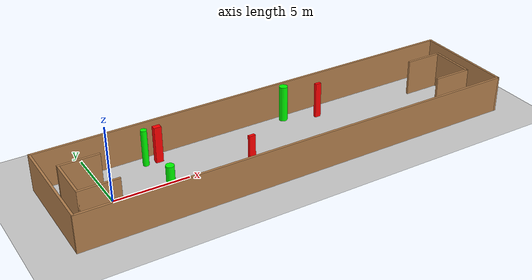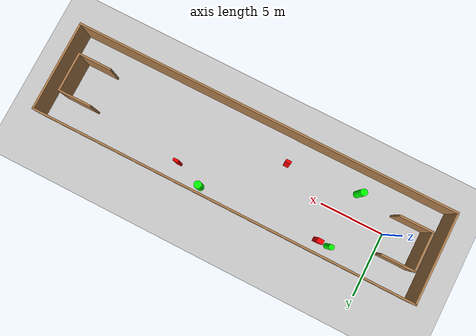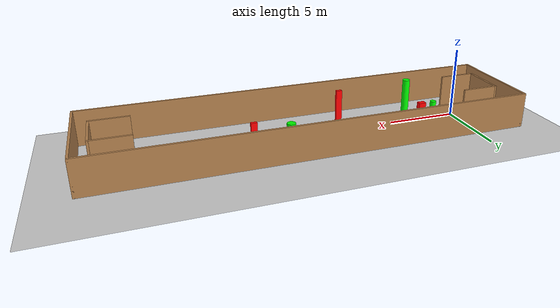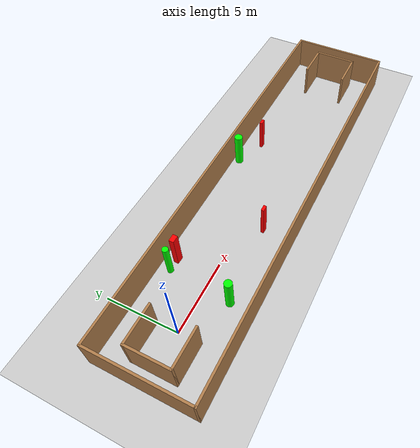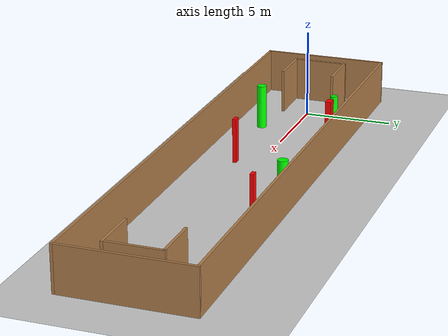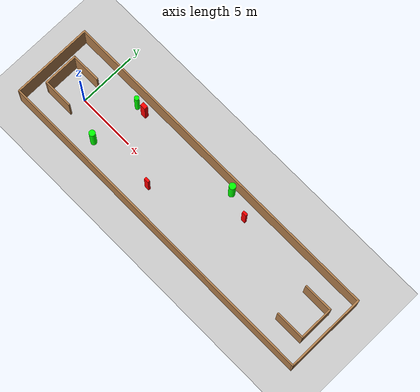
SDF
<sdf version="1.7">
 <world name="default">
  <light name="sun" type="directional">
   <pose>0 0 10 0 -0 0</pose>
   <diffuse>0.8 0.8 0.8 1</diffuse>
   <specular>0.2 0.2 0.2 1</specular>
   <attenuation>
    <range>1000</range>
    <constant>0.9</constant>
    <linear>0.01</linear>
    <quadratic>0.001</quadratic>
   </attenuation>
   <direction>-0.5 0.1 -0.9</direction>
   <spot><inner_angle>0</inner_angle><outer_angle>0</outer_angle><falloff>0</falloff></spot>
  </light>
  <model name="ground_plane">
   <static>1</static>
   <link name="link">
    <collision name="collision">
     <geometry><plane><normal>0 0 1</normal><size>100 100</size></plane></geometry>
     <surface>
      <contact><collide_bitmask>65535</collide_bitmask></contact>
      <friction><ode><mu>100</mu><mu2>50</mu2></ode></friction>
     </surface>
    </collision>
    <visual name="visual">
     <cast_shadows>0</cast_shadows>
     <geometry><plane><normal>0 0 1</normal><size>100 100</size></plane></geometry>
     <material>
      <script><uri>file://media/materials/scripts/gazebo.material</uri><name>Gazebo/Grey</name></script>
     </material>
    </visual>
   </link>
  </model>
  <gravity>0 0 -9.8</gravity>
  <magnetic_field>6e-06 2.3e-05 -4.2e-05</magnetic_field>
  <atmosphere type="adiabatic"/>
  <physics type="ode">
   <max_step_size>0.001</max_step_size>
   <real_time_factor>1</real_time_factor>
   <real_time_update_rate>1000</real_time_update_rate>
  </physics>
  <scene><ambient>0.4 0.4 0.4 1</ambient><background>0.7 0.7 0.7 1</background><shadows>1</shadows></scene>
  <spherical_coordinates>
   <surface_model>EARTH_WGS84</surface_model>
   <latitude_deg>0</latitude_deg>
   <longitude_deg>0</longitude_deg>
   <elevation>0</elevation>
   <heading_deg>0</heading_deg>
  </spherical_coordinates>
  <model name="my_base_walls">
   <link name="Wall_0">
    <collision name="Wall_0_Collision">
     <geometry><box><size>7.15 0.15 2.5</size></box></geometry>
     <pose>0 0 1.25 0 -0 0</pose>
    </collision>
    <visual name="Wall_0_Visual">
     <pose>0 0 1.25 0 -0 0</pose>
     <geometry><box><size>7.15 0.15 2.5</size></box></geometry>
     <material>
      <script><uri>file://media/materials/scripts/gazebo.material</uri><name>Gazebo/Wood</name></script>
      <ambient>1 1 1 1</ambient>
     </material>
     <meta><layer>0</layer></meta>
    </visual>
    <pose>-15 0 0 0 -0 1.5708</pose>
   </link>
   <link name="Wall_10">
    <collision name="Wall_10_Collision">
     <geometry><box><size>2.65 0.15 2.5</size></box></geometry>
     <pose>0 0 1.25 0 -0 0</pose>
    </collision>
    <visual name="Wall_10_Visual">
     <pose>0 0 1.25 0 -0 0</pose>
     <geometry><box><size>2.65 0.15 2.5</size></box></geometry>
     <material>
      <script><uri>file://media/materials/scripts/gazebo.material</uri><name>Gazebo/Wood</name></script>
      <ambient>1 1 1 1</ambient>
     </material>
     <meta><layer>0</layer></meta>
    </visual>
    <pose>-12.75 -1.5 0 0 -0 0</pose>
   </link>
   <link name="Wall_12">
    <collision name="Wall_12_Collision">
     <geometry><box><size>2.65 0.15 2.5</size></box></geometry>
     <pose>0 0 1.25 0 -0 0</pose>
    </collision>
    <visual name="Wall_12_Visual">
     <pose>0 0 1.25 0 -0 0</pose>
     <geometry><box><size>2.65 0.15 2.5</size></box></geometry>
     <material>
      <script><uri>file://media/materials/scripts/gazebo.material</uri><name>Gazebo/Wood</name></script>
      <ambient>1 1 1 1</ambient>
     </material>
     <meta><layer>0</layer></meta>
    </visual>
    <pose>-12.75 1.5 0 0 -0 0</pose>
   </link>
   <link name="Wall_14">
    <collision name="Wall_14_Collision">
     <geometry><box><size>3.15 0.15 2.5</size></box></geometry>
     <pose>0 0 1.25 0 -0 0</pose>
    </collision>
    <visual name="Wall_14_Visual">
     <pose>0 0 1.25 0 -0 0</pose>
     <geometry><box><size>3.15 0.15 2.5</size></box></geometry>
     <material>
      <script><uri>file://media/materials/scripts/gazebo.material</uri><name>Gazebo/Wood</name></script>
      <ambient>1 1 1 1</ambient>
     </material>
     <meta><layer>0</layer></meta>
    </visual>
    <pose>14 0 0 0 -0 -1.5708</pose>
   </link>
   <link name="Wall_15">
    <collision name="Wall_15_Collision">
     <geometry><box><size>2.65 0.15 2.5</size></box></geometry>
     <pose>0 0 1.25 0 -0 0</pose>
    </collision>
    <visual name="Wall_15_Visual">
     <pose>0 0 1.25 0 -0 0</pose>
     <geometry><box><size>2.65 0.15 2.5</size></box></geometry>
     <material>
      <script><uri>file://media/materials/scripts/gazebo.material</uri><name>Gazebo/Wood</name></script>
      <ambient>1 1 1 1</ambient>
     </material>
     <meta><layer>0</layer></meta>
    </visual>
    <pose>12.75 -1.5 0 0 -0 3.14159</pose>
   </link>
   <link name="Wall_17">
    <collision name="Wall_17_Collision">
     <geometry><box><size>2.65 0.15 2.5</size></box></geometry>
     <pose>0 0 1.25 0 -0 0</pose>
    </collision>
    <visual name="Wall_17_Visual">
     <pose>0 0 1.25 0 -0 0</pose>
     <geometry><box><size>2.65 0.15 2.5</size></box></geometry>
     <material>
      <script><uri>file://media/materials/scripts/gazebo.material</uri><name>Gazebo/Wood</name></script>
      <ambient>1 1 1 1</ambient>
     </material>
     <meta><layer>0</layer></meta>
    </visual>
    <pose>12.75 1.5 0 0 -0 3.14159</pose>
   </link>
   <link name="Wall_2">
    <collision name="Wall_2_Collision">
     <geometry><box><size>30.15 0.15 2.5</size></box></geometry>
     <pose>0 0 1.25 0 -0 0</pose>
    </collision>
    <visual name="Wall_2_Visual">
     <pose>0 0 1.25 0 -0 0</pose>
     <geometry><box><size>30.15 0.15 2.5</size></box></geometry>
     <material>
      <script><uri>file://media/materials/scripts/gazebo.material</uri><name>Gazebo/Wood</name></script>
      <ambient>1 1 1 1</ambient>
     </material>
     <meta><layer>0</layer></meta>
    </visual>
    <pose>-0 -3.5 0 0 -0 0</pose>
   </link>
   <link name="Wall_4">
    <collision name="Wall_4_Collision">
     <geometry><box><size>30.15 0.15 2.5</size></box></geometry>
     <pose>0 0 1.25 0 -0 0</pose>
    </collision>
    <visual name="Wall_4_Visual">
     <pose>0 0 1.25 0 -0 0</pose>
     <geometry><box><size>30.15 0.15 2.5</size></box></geometry>
     <material>
      <script><uri>file://media/materials/scripts/gazebo.material</uri><name>Gazebo/Wood</name></script>
      <ambient>1 1 1 1</ambient>
     </material>
     <meta><layer>0</layer></meta>
    </visual>
    <pose>-0 3.5 0 0 -0 0</pose>
   </link>
   <link name="Wall_6">
    <collision name="Wall_6_Collision">
     <geometry><box><size>7.15 0.15 2.5</size></box></geometry>
     <pose>0 0 1.25 0 -0 0</pose>
    </collision>
    <visual name="Wall_6_Visual">
     <pose>0 0 1.25 0 -0 0</pose>
     <geometry><box><size>7.15 0.15 2.5</size></box></geometry>
     <material>
      <script><uri>file://media/materials/scripts/gazebo.material</uri><name>Gazebo/Wood</name></script>
      <ambient>1 1 1 1</ambient>
     </material>
     <meta><layer>0</layer></meta>
    </visual>
    <pose>15 0 0 0 -0 -1.5708</pose>
   </link>
   <link name="Wall_9">
    <collision name="Wall_9_Collision">
     <geometry><box><size>3.15 0.15 2.5</size></box></geometry>
     <pose>0 0 1.25 0 -0 0</pose>
    </collision>
    <visual name="Wall_9_Visual">
     <pose>0 0 1.25 0 -0 0</pose>
     <geometry><box><size>3.15 0.15 2.5</size></box></geometry>
     <material>
      <script><uri>file://media/materials/scripts/gazebo.material</uri><name>Gazebo/Wood</name></script>
      <ambient>1 1 1 1</ambient>
     </material>
     <meta><layer>0</layer></meta>
    </visual>
    <pose>-14 0 0 0 -0 -1.5708</pose>
   </link>
   <static>1</static>
   <pose>11.5 0 0 0 -0 0</pose>
  </model>
  <model name="cylinder1">
   <static>1</static>
   <link name="link">
    <inertial>
     <mass>1</mass>
     <inertia><ixx>0.5</ixx><ixy>0</ixy><ixz>0</ixz><iyy>0.5</iyy><iyz>0</iyz><izz>1</izz></inertia>
    </inertial>
    <collision name="collision">
     <geometry><cylinder><radius>0.2658889074120059</radius><length>2.5</length></cylinder></geometry>
    </collision>
    <visual name="visual">
     <geometry><cylinder><radius>0.2658889074120059</radius><length>2.5</length></cylinder></geometry>
     <material>
      <ambient>0 1 0 1</ambient>
      <diffuse>0 1 0 1</diffuse>
      <specular>0.1 0.1 0.1 1</specular>
      <emissive>0 0 0 0</emissive>
     </material>
    </visual>
   </link>
   <pose>2.9639786113921467 -1.8128481252638151 1.25 0 0 0</pose>
  </model>
  <model name="cylinder2">
   <static>1</static>
   <link name="link">
    <inertial>
     <mass>1</mass>
     <inertia><ixx>0.5</ixx><ixy>0</ixy><ixz>0</ixz><iyy>0.5</iyy><iyz>0</iyz><izz>1</izz></inertia>
    </inertial>
    <collision name="collision">
     <geometry><cylinder><radius>0.2838754976772858</radius><length>2.5</length></cylinder></geometry>
    </collision>
    <visual name="visual">
     <geometry><cylinder><radius>0.2838754976772858</radius><length>2.5</length></cylinder></geometry>
     <material>
      <ambient>0 1 0 1</ambient>
      <diffuse>0 1 0 1</diffuse>
      <specular>0.1 0.1 0.1 1</specular>
      <emissive>0 0 0 0</emissive>
     </material>
    </visual>
   </link>
   <pose>13.55348208700764 2.987268514775308 1.25 0 0 0</pose>
  </model>
  <model name="cylinder3">
   <static>1</static>
   <link name="link">
    <inertial>
     <mass>1</mass>
     <inertia><ixx>0.5</ixx><ixy>0</ixy><ixz>0</ixz><iyy>0.5</iyy><iyz>0</iyz><izz>1</izz></inertia>
    </inertial>
    <collision name="collision">
     <geometry><cylinder><radius>0.20444965022114583</radius><length>2.5</length></cylinder></geometry>
    </collision>
    <visual name="visual">
     <geometry><cylinder><radius>0.20444965022114583</radius><length>2.5</length></cylinder></geometry>
     <material>
      <ambient>0 1 0 1</ambient>
      <diffuse>0 1 0 1</diffuse>
      <specular>0.1 0.1 0.1 1</specular>
      <emissive>0 0 0 0</emissive>
     </material>
    </visual>
   </link>
   <pose>3.32140589944402 2.62036709256188 1.25 0 0 0</pose>
  </model>
  <model name="box1">
   <static>1</static>
   <link name="link">
    <inertial>
     <mass>1</mass>
     <inertia><ixx>0.083</ixx><ixy>0</ixy><ixz>0</ixz><iyy>0.083</iyy><iyz>0</iyz><izz>0.083</izz></inertia>
    </inertial>
    <collision name="collision">
     <geometry><box><size>0.49460520225117877 0.3365756316778455 2.5</size></box></geometry>
    </collision>
    <visual name="visual">
     <geometry><box><size>0.49460520225117877 0.3365756316778455 2.5</size></box></geometry>
     <material>
      <ambient>1 0 0 1</ambient>
      <diffuse>1 0 0 1</diffuse>
      <specular>0.1 0.1 0.1 1</specular>
      <emissive>0 0 0 0</emissive>
     </material>
    </visual>
    <sensor name="my_contact" type="contact">
     <contact><collision>box_collision</collision><topic>__default_topic__</topic></contact>
    </sensor>
   </link>
   <pose>4.18708351510918 2.593320131816765 1.25 0 0 0</pose>
  </model>
  <model name="box2">
   <static>1</static>
   <link name="link">
    <inertial>
     <mass>1</mass>
     <inertia><ixx>0.083</ixx><ixy>0</ixy><ixz>0</ixz><iyy>0.083</iyy><iyz>0</iyz><izz>0.083</izz></inertia>
    </inertial>
    <collision name="collision">
     <geometry><box><size>0.41218956261689166 0.2004503343442122 2.5</size></box></geometry>
    </collision>
    <visual name="visual">
     <geometry><box><size>0.41218956261689166 0.2004503343442122 2.5</size></box></geometry>
     <material>
      <ambient>1 0 0 1</ambient>
      <diffuse>1 0 0 1</diffuse>
      <specular>0.1 0.1 0.1 1</specular>
      <emissive>0 0 0 0</emissive>
     </material>
    </visual>
    <sensor name="my_contact" type="contact">
     <contact><collision>box_collision</collision><topic>__default_topic__</topic></contact>
    </sensor>
   </link>
   <pose>15.736017953481033 2.155318344503506 1.25 0 0 0</pose>
  </model>
  <model name="box3">
   <static>1</static>
   <link name="link">
    <inertial>
     <mass>1</mass>
     <inertia><ixx>0.083</ixx><ixy>0</ixy><ixz>0</ixz><iyy>0.083</iyy><iyz>0</iyz><izz>0.083</izz></inertia>
    </inertial>
    <collision name="collision">
     <geometry><box><size>0.42499197826769863 0.2039555468480621 2.5</size></box></geometry>
    </collision>
    <visual name="visual">
     <geometry><box><size>0.42499197826769863 0.2039555468480621 2.5</size></box></geometry>
     <material>
      <ambient>1 0 0 1</ambient>
      <diffuse>1 0 0 1</diffuse>
      <specular>0.1 0.1 0.1 1</specular>
      <emissive>0 0 0 0</emissive>
     </material>
    </visual>
    <sensor name="my_contact" type="contact">
     <contact><collision>box_collision</collision><topic>__default_topic__</topic></contact>
    </sensor>
   </link>
   <pose>8.617228808824557 -1.363076119432253 1.25 0 0 0</pose>
  </model>
 </world>
</sdf>
